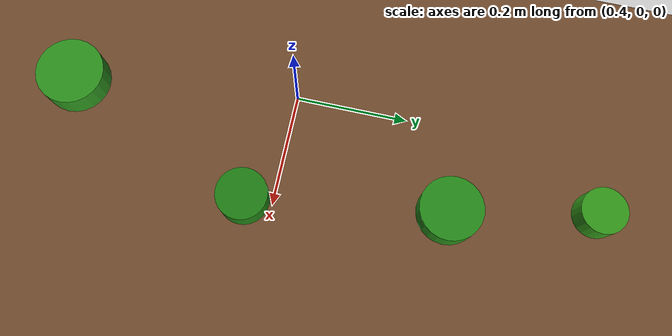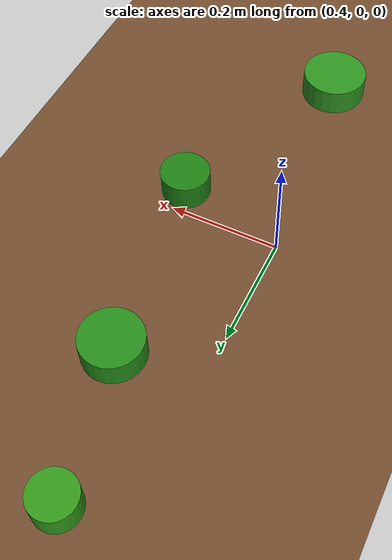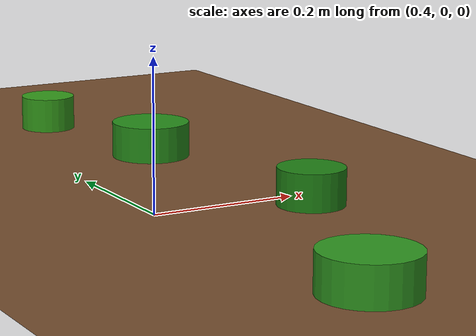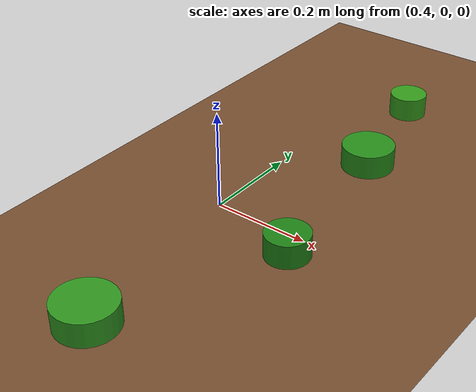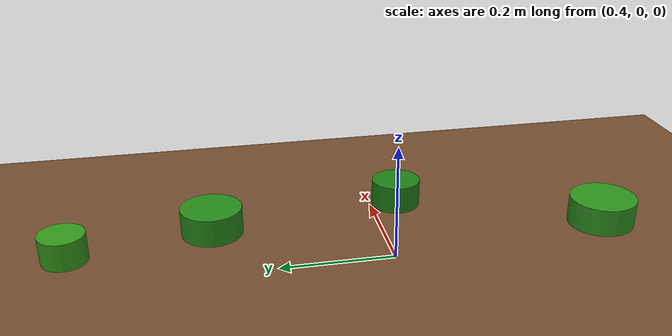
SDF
<sdf version='1.10'>
  <world name='simple_field'>

    <!-- ── Simulation plugins ─────────────────────────────────────────────── -->
    <physics name='1ms' type='ignored'>
      <max_step_size>0.001</max_step_size>
      <real_time_factor>1</real_time_factor>
      <real_time_update_rate>1000</real_time_update_rate>
    </physics>
    <plugin name='gz::sim::systems::Physics'         filename='gz-sim-physics-system'/>
    <plugin name='gz::sim::systems::UserCommands'    filename='gz-sim-user-commands-system'/>
    <plugin name='gz::sim::systems::SceneBroadcaster' filename='gz-sim-scene-broadcaster-system'/>
    <plugin name='gz::sim::systems::Contact'         filename='gz-sim-contact-system'/>
    <plugin name='gz::sim::systems::Sensors'         filename='gz-sim-sensors-system'>
      <render_engine>ogre2</render_engine>
      <headless_rendering>1</headless_rendering>
    </plugin>

    <!-- ── Scene / atmosphere ────────────────────────────────────────────── -->
    <gravity>0 0 -9.8</gravity>
    <atmosphere type='adiabatic'/>
    <scene>
      <ambient>0.5 0.5 0.5 1</ambient>
      <background>0.6 0.7 0.9 1</background>
      <shadows>true</shadows>
    </scene>

    <!-- ── Sun light ─────────────────────────────────────────────────────── -->
    <light name='sun' type='directional'>
      <cast_shadows>true</cast_shadows>
      <pose>0 0 10 0 -0 0</pose>
      <diffuse>0.9 0.9 0.9 1</diffuse>
      <specular>0.2 0.2 0.2 1</specular>
      <direction>-0.5 0.1 -0.9</direction>
    </light>

    <!-- ── Ground plane (soil colour) ───────────────────────────────────── -->
    <model name='ground_plane'>
      <static>true</static>
      <link name='link'>
        <collision name='collision'>
          <geometry>
            <plane><normal>0 0 1</normal><size>10 10</size></plane>
          </geometry>
        </collision>
        <visual name='visual'>
          <geometry>
            <plane><normal>0 0 1</normal><size>10 10</size></plane>
          </geometry>
          <material>
            <ambient>0.45 0.30 0.18 1</ambient>
            <diffuse>0.45 0.30 0.18 1</diffuse>
            <specular>0.1 0.1 0.1 1</specular>
          </material>
        </visual>
      </link>
    </model>

    <!-- ── Weed objects (green cylinders) ───────────────────────────────── -->
    <!-- These are placed at positions the arm camera can see when
         scanning.  Adjust positions if your calibration differs. -->

    <model name='weed_A'>
      <static>true</static>
      <pose>0.55 0.30 0.025 0 0 0</pose>
      <link name='link'>
        <visual name='vis'>
          <geometry><cylinder><radius>0.055</radius><length>0.05</length></cylinder></geometry>
          <material>
            <ambient>0.15 0.55 0.10 1</ambient>
            <diffuse>0.15 0.55 0.10 1</diffuse>
          </material>
        </visual>
        <collision name='col'>
          <geometry><cylinder><radius>0.055</radius><length>0.05</length></cylinder></geometry>
        </collision>
      </link>
    </model>

    <model name='weed_B'>
      <static>true</static>
      <pose>0.60 -0.05 0.025 0 0 0</pose>
      <link name='link'>
        <visual name='vis'>
          <geometry><cylinder><radius>0.045</radius><length>0.05</length></cylinder></geometry>
          <material>
            <ambient>0.12 0.50 0.08 1</ambient>
            <diffuse>0.12 0.50 0.08 1</diffuse>
          </material>
        </visual>
        <collision name='col'>
          <geometry><cylinder><radius>0.045</radius><length>0.05</length></cylinder></geometry>
        </collision>
      </link>
    </model>

    <model name='weed_C'>
      <static>true</static>
      <pose>0.45 -0.40 0.025 0 0 0</pose>
      <link name='link'>
        <visual name='vis'>
          <geometry><cylinder><radius>0.060</radius><length>0.05</length></cylinder></geometry>
          <material>
            <ambient>0.18 0.58 0.12 1</ambient>
            <diffuse>0.18 0.58 0.12 1</diffuse>
          </material>
        </visual>
        <collision name='col'>
          <geometry><cylinder><radius>0.060</radius><length>0.05</length></cylinder></geometry>
        </collision>
      </link>
    </model>

    <model name='weed_D'>
      <static>true</static>
      <pose>0.50 0.55 0.025 0 0 0</pose>
      <link name='link'>
        <visual name='vis'>
          <geometry><cylinder><radius>0.040</radius><length>0.05</length></cylinder></geometry>
          <material>
            <ambient>0.20 0.60 0.10 1</ambient>
            <diffuse>0.20 0.60 0.10 1</diffuse>
          </material>
        </visual>
        <collision name='col'>
          <geometry><cylinder><radius>0.040</radius><length>0.05</length></cylinder></geometry>
        </collision>
      </link>
    </model>

  </world>
</sdf>
